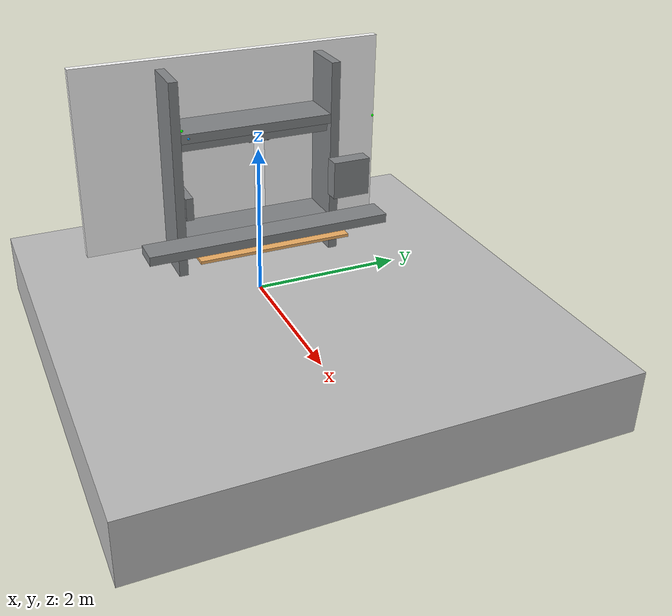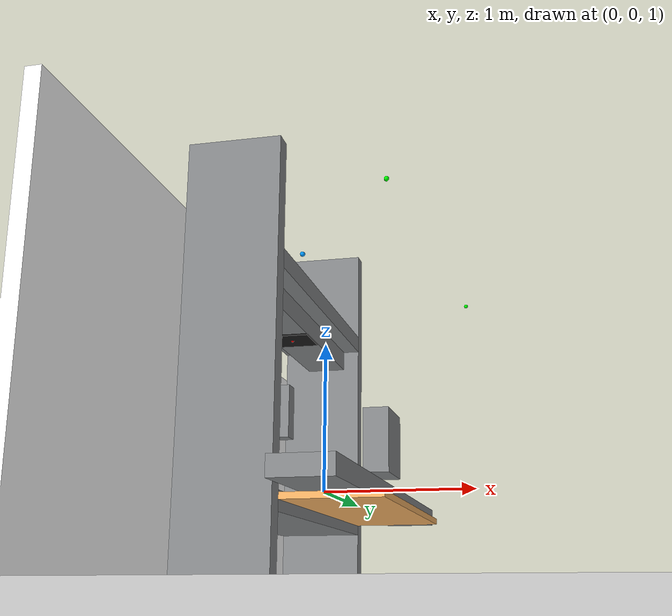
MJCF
<mujoco model="sharework_fixed_parts">
  <compiler angle="radian"/>

  <visual>
    <headlight ambient="0.3 0.3 0.3" diffuse="0.2 0.2 0.2" specular="0 0 0"/>
    <global offwidth="1280" offheight="960" />

  </visual>

  <asset>
    <material name="grey"  rgba="0.517647 0.529412 0.537255 1"/>
    <material name="beech" rgba="0.952941 0.694118 0.392157 1"/>
    <material name="dark_grey" rgba="0.1 0.1 0.1 1"/>
    <material name="white" rgba="1 1 1 1"/>
        <texture name="skybox"
             type="skybox"
             builtin="gradient"
             rgb1="0.95 0.95 0.95"
             rgb2="0.65 0.7 0.75"
             width="512"
             height="512"/>
  </asset>

  <worldbody>
    <light pos="1.5  0.0 3.6" dir="0 0 -1" diffuse="0.9 0.9 0.85" ambient="0.35 0.35 0.35" specular="0.15 0.15 0.15" castshadow="true"/>
    <light pos="1.5  3.0 3.6" dir="0 0 -1" diffuse="0.9 0.9 0.85" ambient="0.35 0.35 0.35" specular="0.15 0.15 0.15" castshadow="true"/>
    <light pos="1.5  -3.0 3.6" dir="0 0 -1" diffuse="0.9 0.9 0.85" ambient="0.35 0.35 0.35" specular="0.15 0.15 0.15" castshadow="true"/>
    <light pos="-1.2  0.0 1.6" dir="1 0 0"  diffuse="0.35 0.35 0.35" ambient="0.25 0.25 0.25" specular="0 0 0" castshadow="false"/>

    <body name="cell_static" pos="0 0 0">

      <!-- portal: colonne + travi -->
      <geom name="right_column" type="box" pos="-0.290 1.060 1.500" size="0.290 0.060 1.500" material="grey"/>
      <geom name="left_column"  type="box" pos="-0.290 -1.060 1.500" size="0.290 0.060 1.500" material="grey"/>
      <geom name="lower_beam"   type="box" pos="-0.290 0 0.847" size="0.290 1.000 0.060" material="grey"/>
      <geom name="upper_beam"   type="box" pos="-0.290 0 2.268" size="0.290 1.000 0.060" material="grey"/>

      <!-- guida fissa e cursore (track_joint e' fixed: guida non usata) -->
      <geom name="guide_fixed" type="box" pos="-0.255 0 2.138" size="0.140 1.000 0.070" material="grey"/>
      <geom name="cursor"      type="box" pos="-0.255 0.061 2.063" size="0.140 0.140 0.005" material="dark_grey"/>

      <!-- rotazione base robot: roll=pi, yaw=pi/2+pi (yaw ruotato di 180
           gradi attorno all'asse verticale reale del mount rispetto alla
           versione precedente) -->
      <site name="ur10e_mount" pos="-0.255 0.061 2.058" quat="0 -0.7071068 0.7071068 0" size="0.01" rgba="1 0 0 1"/>

      <!-- tavolo + rotaia -->
      <geom name="table" type="box" pos="0.300 0 0.875" size="0.300 1.000 0.020" material="beech"/>
      <geom name="rail"  type="box" pos="0.300 0 0.955" size="0.180 1.612 0.060" material="grey"/>

      <!-- parete + quadro elettrico -->
      <geom name="wall"             type="box" pos="-1.030 0 1.500" size="0.050 2.120 1.500" material="white"/>
      <geom name="electric_cabinet" type="box" pos="-0.780 0.650 1.000" size="0.200 0.350 1.000" material="white"/>

      <!-- pavimento -->
      <geom name="floor" type="box" pos="1.040 0 -0.005" size="3.000 3.000 0.405" material="white" rgba="0.75 0.75 0.75 1"/>

      <!-- oggetti generici a muro (armadio elettrico secondario, monitor) -->
      <geom name="thing_on_wall"   type="box" pos="-0.2 -0.95 1.35" size="0.25 0.05 0.15" material="grey"/>
      <geom name="computer_screen" type="box" pos="0.15 1.2 1.5"  size="0.10 0.25 0.25" material="grey"/>

      <!-- frame statici delle telecamere (world_to_cam_*, dai tuoi static_transform_publisher) -->
      <site name="rs1_camera_link_calibration_check" pos="0.845205 1.15052 2.57347"
            quat="0.654969 0.292609 0.252083 -0.649499" size="0.015" rgba="0 1 0 1"/>
      <site name="rs2_camera_link_calibration_check" pos="0.649999 -1.16584 2.63428"
            quat="0.658381 -0.294127 0.265496 0.63995" size="0.015" rgba="0 1 0 1"/>
      <site name="zed_camera_link_calibration_check" pos="0.0937849 -0.929844 2.30862"
            quat="0.829537 0.185429 0.512749 0.120719" size="0.015" rgba="0 0.6 1 1"/>

    </body>
  </worldbody>
</mujoco>
